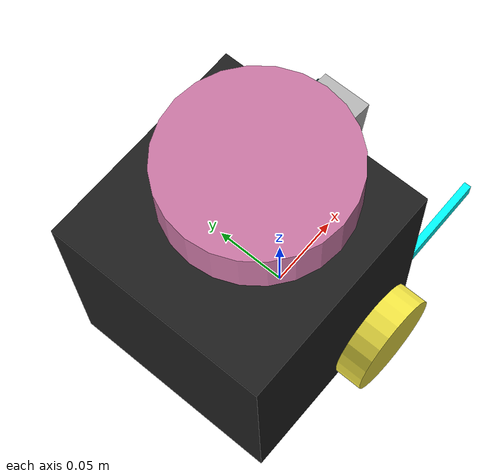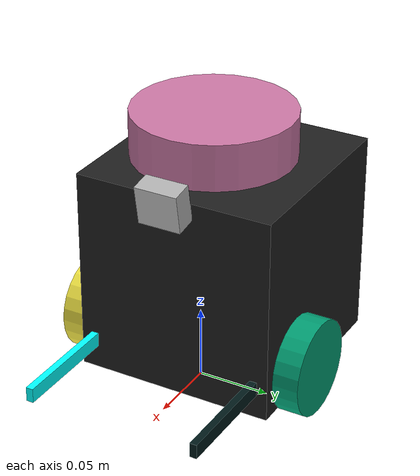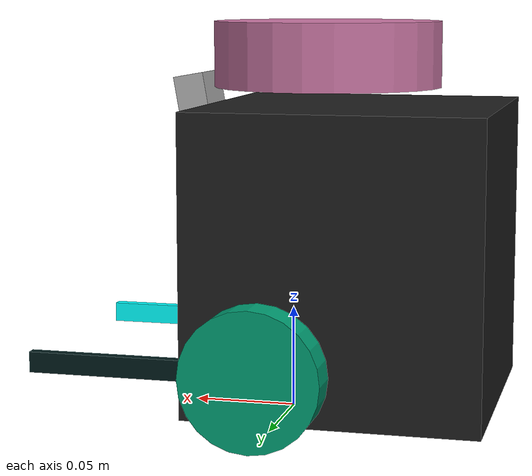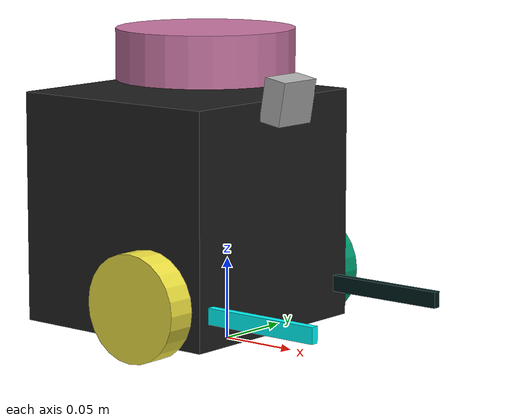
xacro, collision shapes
<?xml version="1.0" ?>
<robot name="turtlebot3_burger_for_autorace" xmlns:xacro="http://ros.org/wiki/xacro">
  <xacro:include filename="$(find turtlebot3_description)/urdf/common_properties.xacro"/>
  <xacro:include filename="$(find turtlebot3_description)/urdf/turtlebot3_burger_for_autorace.gazebo.xacro"/>

  <link name="base_footprint"/>

  <joint name="base_joint" type="fixed">
    <parent link="base_footprint"/>
    <child link="base_link"/>
    <origin xyz="0.0 0.0 0.010" rpy="0 0 0"/>
  </joint>

  <link name="base_link">
    <visual>
      <origin xyz="-0.032 0 0.0" rpy="0 0 0"/>
      <geometry>
        <mesh filename="package://turtlebot3_description/meshes/bases/burger_base.stl" scale="0.001 0.001 0.001"/>
      </geometry>
      <material name="light_black"/>
    </visual>

    <collision>
      <origin xyz="-0.032 0 0.070" rpy="0 0 0"/>
      <geometry>
        <box size="0.140 0.140 0.143"/>
      </geometry>
    </collision>

    <inertial>
      <origin xyz="0 0 0" rpy="0 0 0"/>
      <mass value="8.2573504e-01"/>
      <inertia ixx="2.2124416e-03" ixy="-1.2294101e-05" ixz="3.4938785e-05"
               iyy="2.1193702e-03" iyz="-5.0120904e-06"
               izz="2.0064271e-03" />
    </inertial>
  </link>

  <joint name="wheel_left_joint" type="continuous">
    <parent link="base_link"/>
    <child link="wheel_left_link"/>
    <origin xyz="0.0 0.08 0.023" rpy="-1.57 0 0"/>
    <axis xyz="0 0 1"/>
  </joint>

  <link name="wheel_left_link">
    <visual>
      <origin xyz="0 0 0" rpy="1.57 0 0"/>
      <geometry>
        <mesh filename="package://turtlebot3_description/meshes/wheels/left_tire.stl" scale="0.001 0.001 0.001"/>
      </geometry>
      <material name="dark"/>
    </visual>

    <collision>
      <origin xyz="0 0 0" rpy="0 0 0"/>
      <geometry>
        <cylinder length="0.018" radius="0.033"/>
      </geometry>
    </collision>

    <inertial>
      <origin xyz="0 0 0" />
      <mass value="2.8498940e-02" />
      <inertia ixx="1.1175580e-05" ixy="-4.2369783e-11" ixz="-5.9381719e-09"
               iyy="1.1192413e-05" iyz="-1.4400107e-11"
               izz="2.0712558e-05" />
      </inertial>
  </link>

  <joint name="wheel_right_joint" type="continuous">
    <parent link="base_link"/>
    <child link="wheel_right_link"/>
    <origin xyz="0.0 -0.080 0.023" rpy="-1.57 0 0"/>
    <axis xyz="0 0 1"/>
  </joint>

  <link name="wheel_right_link">
    <visual>
      <origin xyz="0 0 0" rpy="1.57 0 0"/>
      <geometry>
        <mesh filename="package://turtlebot3_description/meshes/wheels/right_tire.stl" scale="0.001 0.001 0.001"/>
      </geometry>
      <material name="dark"/>
    </visual>

    <collision>
      <origin xyz="0 0 0" rpy="0 0 0"/>
      <geometry>
        <cylinder length="0.018" radius="0.033"/>
      </geometry>
    </collision>

    <inertial>
      <origin xyz="0 0 0" />
      <mass value="2.8498940e-02" />
      <inertia ixx="1.1175580e-05" ixy="-4.2369783e-11" ixz="-5.9381719e-09"
               iyy="1.1192413e-05" iyz="-1.4400107e-11"
               izz="2.0712558e-05" />
      </inertial>
  </link>

  <joint name="caster_back_joint" type="fixed">
    <parent link="base_link"/>
    <child link="caster_back_link"/>
    <origin xyz="-0.081 0 -0.004" rpy="-1.57 0 0"/>
  </joint>

  <link name="caster_back_link">
    <collision>
      <origin xyz="0 0.001 0" rpy="0 0 0"/>
      <geometry>
        <box size="0.030 0.009 0.020"/>
      </geometry>
    </collision>

    <inertial>
      <origin xyz="0 0 0" />
      <mass value="0.005" />
      <inertia ixx="0.001" ixy="0.0" ixz="0.0"
               iyy="0.001" iyz="0.0"
               izz="0.001" />
    </inertial>
  </link>

  <joint name="imu_joint" type="fixed">
    <parent link="base_link"/>
    <child link="imu_link"/>
    <origin xyz="-0.032 0 0.068" rpy="0 0 0"/>
  </joint>

  <link name="imu_link"/>

  <joint name="scan_joint" type="fixed">
    <parent link="base_link"/>
    <child link="base_scan"/>
    <origin xyz="-0.032 0 0.172" rpy="0 0 0"/>
  </joint>

  <link name="base_scan">
    <visual>
      <origin xyz="0 0 0.0" rpy="0 0 0"/>
      <geometry>
        <mesh filename="package://turtlebot3_description/meshes/sensors/lds.stl" scale="0.001 0.001 0.001"/>
      </geometry>
      <material name="dark"/>
    </visual>

    <collision>
      <origin xyz="0.015 0 -0.0065" rpy="0 0 0"/>
      <geometry>
        <cylinder length="0.0315" radius="0.055"/>
      </geometry>
    </collision>

    <inertial>
      <mass value="0.114" />
      <origin xyz="0 0 0" />
      <inertia ixx="0.001" ixy="0.0" ixz="0.0"
               iyy="0.001" iyz="0.0"
               izz="0.001" />
    </inertial>
  </link>

  <joint name="camera_joint" type="fixed">
    <origin xyz="0.040 -0.011 0.130" rpy="0 0.174 0"/>
    <parent link="base_link"/>
    <child link="camera_link"/>
  </joint>

  <link name="camera_link">
    <collision>
      <origin xyz="0.005 0.011 0.013" rpy="0 0 0"/>
      <geometry>
        <box size="0.015 0.030 0.027"/>
      </geometry>
    </collision>
  </link>

  <joint name="camera_rgb_joint" type="fixed">
    <origin xyz="0.003 0.011 0.009" rpy="0 0 0"/>
    <parent link="camera_link"/>
    <child link="camera_rgb_frame"/>
  </joint>
  <link name="camera_rgb_frame"/>

  <joint name="camera_rgb_optical_joint" type="fixed">
    <origin xyz="0 0 0" rpy="-1.57 0 -1.57"/>
    <parent link="camera_rgb_frame"/>
    <child link="camera_rgb_optical_frame"/>
  </joint>
  <link name="camera_rgb_optical_frame"/>

  <!-- Front flippers -->
  <link name="flipper_l_link">
    <visual>
     <origin xyz="0 0 0" rpy="0 0 0" />
     <geometry>
       <box size="0.13 0.005 0.01" />
     </geometry>
     <material name="Cyan">
       <color rgba="0 0.1 0.1 1.0"/>
     </material>
    </visual>
    <collision>
     <origin xyz="0 0 0" rpy="0 0 0"/>
     <geometry>
       <box size="0.13 0.005 0.01" />
     </geometry>
    </collision>
  </link>
  <joint name="flipper_l_joint" type="fixed">
    <origin xyz="0.05 0.06 0.02" rpy="0 0 0"/>
    <parent link="base_link"/>
    <child link="flipper_l_link"/>
  </joint>
  <link name="flipper_r_link">
    <visual>
     <origin xyz="0 0 0" rpy="0 0 0" />
     <geometry>
       <box size="0.13 0.005 0.01" />
     </geometry>
     <material name="Cyan">
       <color rgba="0 1.0 1.0 1.0"/>
     </material>
    </visual>

    <collision>
     <origin xyz="0 0 0" rpy="0 0 0"/>
     <geometry>
       <box size="0.13 0.005 0.01" />
     </geometry>
    </collision>
  </link>
  <joint name="flipper_r_joint" type="fixed">
    <origin xyz="0.05 -0.06 0.02" rpy="0 0 0"/>
    <parent link="base_link"/>
    <child link="flipper_r_link"/>
  </joint>
</robot>
